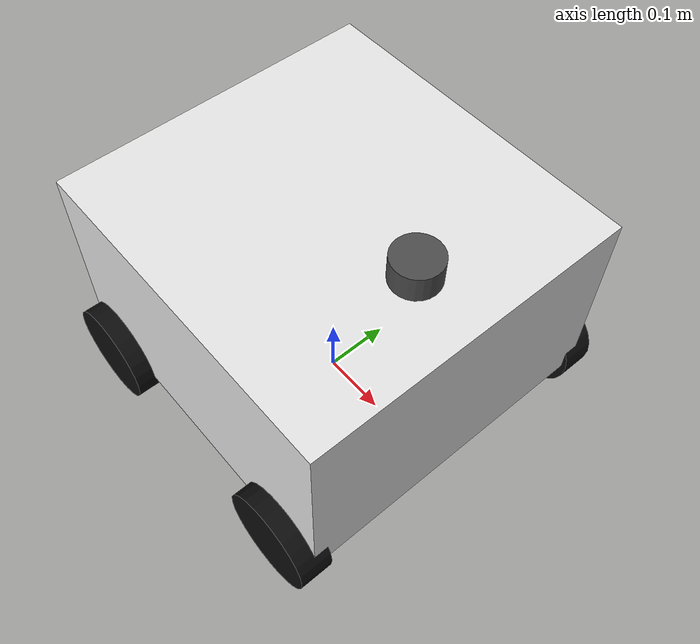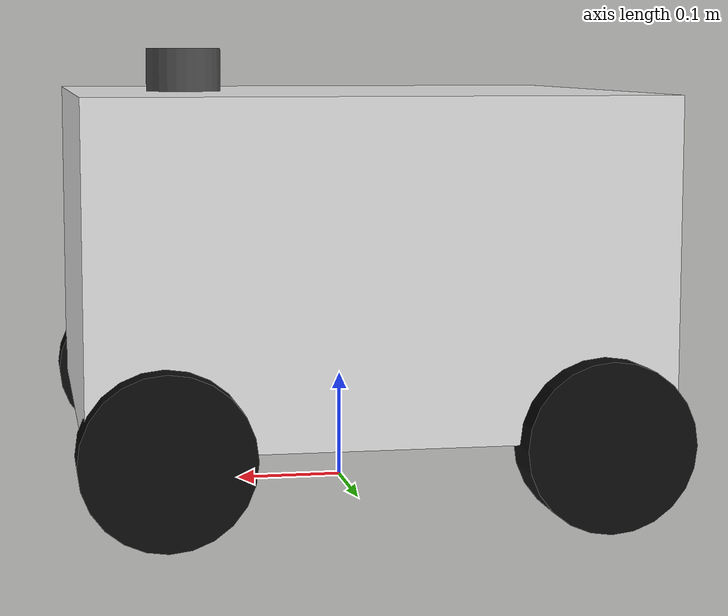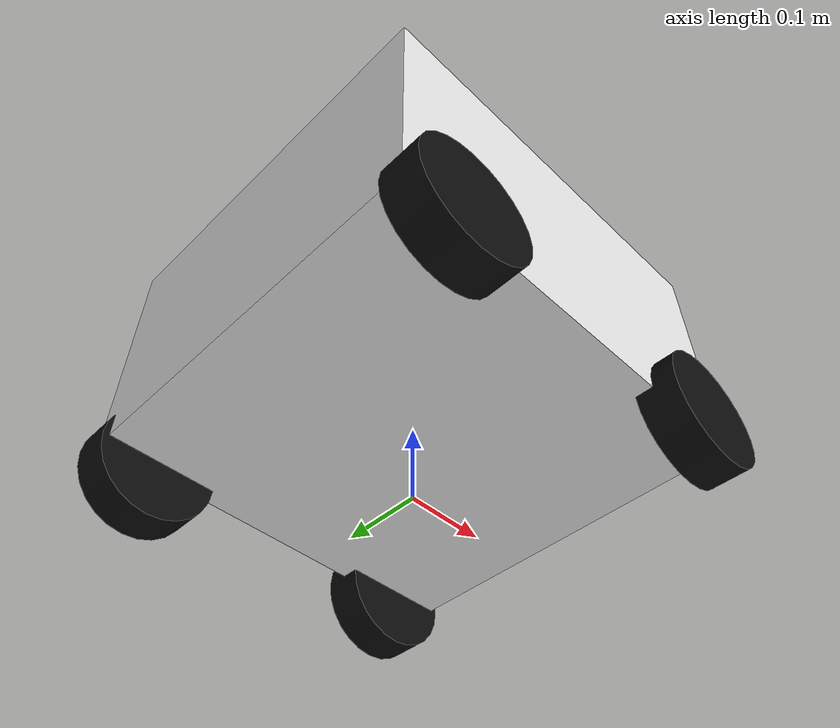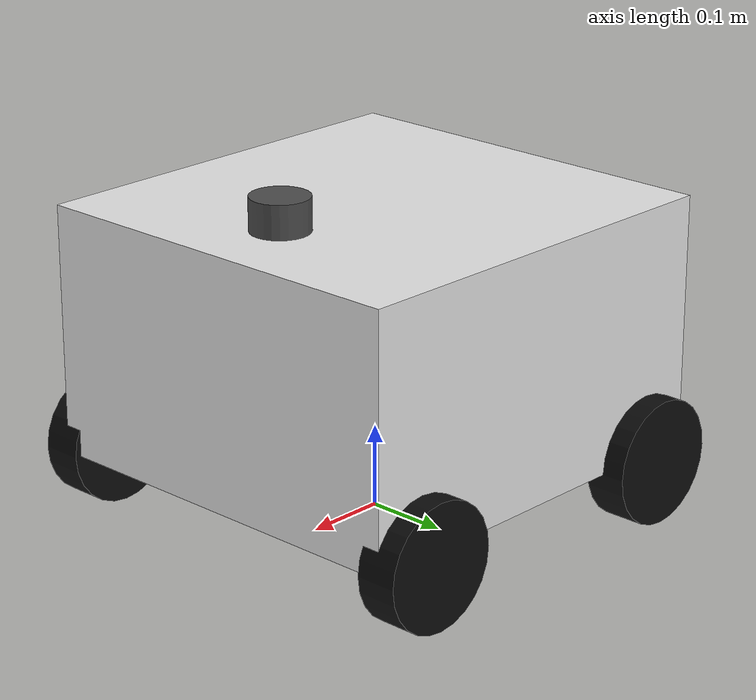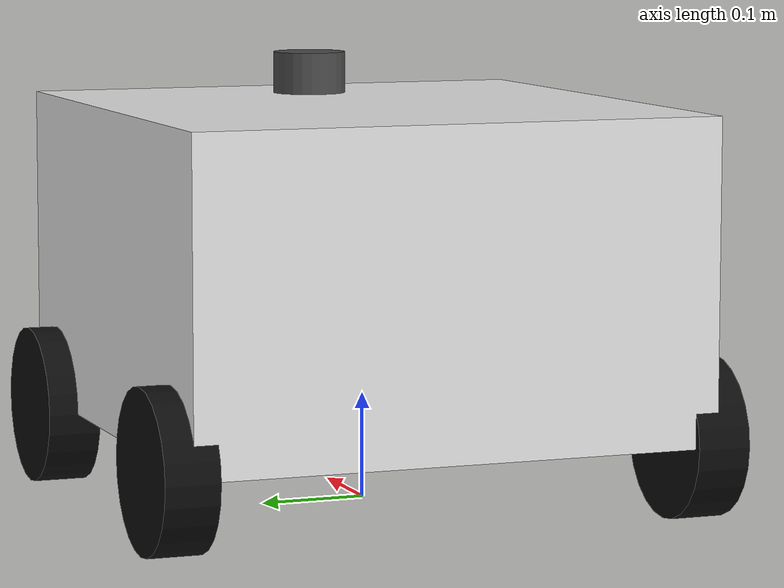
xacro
<?xml version="1.0"?>
<robot name="augdd" xmlns:xacro="http://www.ros.org/wiki/xacro">

  <xacro:property name="chassis_length" value="0.514"/>
  <xacro:property name="chassis_width"  value="0.494"/>
  <xacro:property name="chassis_height" value="0.30"/> <!-- body only, doors/roof excluded -->
  <xacro:property name="chassis_mass"   value="27.0"/>

  <xacro:property name="wheel_radius"   value="0.075"/>
  <xacro:property name="wheel_width"    value="0.05"/>
  <xacro:property name="wheel_mass"     value="1.0"/>

  <xacro:property name="wheel_x_offset" value="0.19"/>  <!-- front/rear from center -->
  <xacro:property name="wheel_y_offset" value="0.25"/>  <!-- half track width -->
  <xacro:property name="wheel_z"        value="0.0"/>

  <material name="augdd_white"><color rgba="0.9 0.9 0.9 1.0"/></material>
  <material name="augdd_grey"><color rgba="0.3 0.3 0.3 1.0"/></material>
  <material name="augdd_black"><color rgba="0.05 0.05 0.05 1.0"/></material>

  <!-- ============ base_footprint / base_link ============ -->
  <link name="base_footprint"/>

  <joint name="base_footprint_joint" type="fixed">
    <parent link="base_footprint"/>
    <child link="base_link"/>
    <origin xyz="0 0 ${wheel_radius}" rpy="0 0 0"/>
  </joint>

  <link name="base_link">
    <visual>
      <origin xyz="0 0 ${chassis_height/2}" rpy="0 0 0"/>
      <geometry>
        <box size="${chassis_length} ${chassis_width} ${chassis_height}"/>
      </geometry>
      <material name="augdd_white"/>
    </visual>
    <collision>
      <origin xyz="0 0 ${chassis_height/2}" rpy="0 0 0"/>
      <geometry>
        <box size="${chassis_length} ${chassis_width} ${chassis_height}"/>
      </geometry>
    </collision>
    <inertial>
      <origin xyz="0 0 ${chassis_height/2}" rpy="0 0 0"/>
      <mass value="${chassis_mass}"/>
      <inertia ixx="0.6" ixy="0.0" ixz="0.0" iyy="0.7" iyz="0.0" izz="0.9"/>
    </inertial>
  </link>

  <!-- ============ wheel macro ============ -->
  <xacro:macro name="wheel" params="prefix x_reflect y_reflect joint_type">
    <link name="${prefix}_wheel_link">
      <visual>
        <origin xyz="0 0 0" rpy="1.5708 0 0"/>
        <geometry><cylinder radius="${wheel_radius}" length="${wheel_width}"/></geometry>
        <material name="augdd_black"/>
      </visual>
      <collision>
        <origin xyz="0 0 0" rpy="1.5708 0 0"/>
        <geometry><cylinder radius="${wheel_radius}" length="${wheel_width}"/></geometry>
      </collision>
      <inertial>
        <mass value="${wheel_mass}"/>
        <inertia ixx="0.01" ixy="0" ixz="0" iyy="0.01" iyz="0" izz="0.01"/>
      </inertial>
    </link>

    <joint name="${prefix}_wheel_joint" type="${joint_type}">
      <parent link="base_link"/>
      <child link="${prefix}_wheel_link"/>
      <origin xyz="${x_reflect*wheel_x_offset} ${y_reflect*wheel_y_offset} ${wheel_z}" rpy="0 0 0"/>
      <axis xyz="0 1 0"/>
      <xacro:if value="${joint_type == 'continuous'}">
        <limit effort="10" velocity="10"/>
      </xacro:if>
    </joint>
  </xacro:macro>

  <!-- front wheels: driven -->
  <xacro:wheel prefix="front_left"  x_reflect="1"  y_reflect="1"  joint_type="continuous"/>
  <xacro:wheel prefix="front_right" x_reflect="1"  y_reflect="-1" joint_type="continuous"/>
  <!-- rear wheels: passive casters -->
  <xacro:wheel prefix="rear_left"   x_reflect="-1" y_reflect="1"  joint_type="continuous"/>
  <xacro:wheel prefix="rear_right"  x_reflect="-1" y_reflect="-1" joint_type="continuous"/>

  <!-- ============ 2D LiDAR ============ -->
  <link name="lidar_link">
    <visual>
      <geometry><cylinder radius="0.035" length="0.04"/></geometry>
      <material name="augdd_grey"/>
    </visual>
    <collision>
      <geometry><cylinder radius="0.035" length="0.04"/></geometry>
    </collision>
    <inertial>
      <mass value="0.15"/>
      <inertia ixx="0.0001" ixy="0" ixz="0" iyy="0.0001" iyz="0" izz="0.0001"/>
    </inertial>
  </link>

  <joint name="lidar_joint" type="fixed">
    <parent link="base_link"/>
    <child link="lidar_link"/>
    <origin xyz="0.15 0 ${chassis_height + 0.02}" rpy="0 0 0"/>
  </joint>

  <!-- ============ IMU (for odom fusion, future use) ============ -->
  <link name="imu_link">
    <visual><geometry><box size="0.02 0.02 0.01"/></geometry></visual>
  </link>
  <joint name="imu_joint" type="fixed">
    <parent link="base_link"/>
    <child link="imu_link"/>
    <origin xyz="0 0 ${chassis_height/2}" rpy="0 0 0"/>
  </joint>

  <!-- ============ Gazebo plugins ============ -->
  <gazebo>
    <plugin name="diff_drive_controller" filename="libgazebo_ros_diff_drive.so">
      <ros>
        <namespace>/</namespace>
      </ros>
      <left_joint>front_left_wheel_joint</left_joint>
      <right_joint>front_right_wheel_joint</right_joint>
      <wheel_separation>${2*wheel_y_offset}</wheel_separation>
      <wheel_diameter>${2*wheel_radius}</wheel_diameter>
      <max_wheel_torque>20</max_wheel_torque>
      <max_wheel_acceleration>2.0</max_wheel_acceleration>
      <command_topic>cmd_vel</command_topic>
      <publish_odom>true</publish_odom>
      <publish_odom_tf>true</publish_odom_tf>
      <publish_wheel_tf>true</publish_wheel_tf>
      <odometry_topic>odom</odometry_topic>
      <odometry_frame>odom</odometry_frame>
      <robot_base_frame>base_footprint</robot_base_frame>
    </plugin>
  </gazebo>

  <gazebo reference="lidar_link">
    <sensor type="ray" name="lidar_sensor">
      <pose>0 0 0 0 0 0</pose>
      <visualize>false</visualize>
      <update_rate>10</update_rate>
      <ray>
        <scan>
          <horizontal>
            <samples>360</samples>
            <resolution>1</resolution>
            <min_angle>-3.14159</min_angle>
            <max_angle>3.14159</max_angle>
          </horizontal>
        </scan>
        <range>
          <min>0.12</min>
          <max>10.0</max>
          <resolution>0.01</resolution>
        </range>
        <noise>
          <type>gaussian</type>
          <mean>0.0</mean>
          <stddev>0.01</stddev>
        </noise>
      </ray>
      <plugin name="lidar_plugin" filename="libgazebo_ros_ray_sensor.so">
        <ros>
          <namespace>/</namespace>
          <remapping>~/out:=scan</remapping>
        </ros>
        <output_type>sensor_msgs/LaserScan</output_type>
        <frame_name>lidar_link</frame_name>
      </plugin>
    </sensor>
  </gazebo>

  <!-- rear caster friction reduction so they don't fight the diff drive -->
  <gazebo reference="rear_left_wheel_link">
    <mu1>0.05</mu1>
    <mu2>0.05</mu2>
  </gazebo>
  <gazebo reference="rear_right_wheel_link">
    <mu1>0.05</mu1>
    <mu2>0.05</mu2>
  </gazebo>
  <gazebo reference="front_left_wheel_link">
    <mu1>1.0</mu1>
    <mu2>1.0</mu2>
  </gazebo>
  <gazebo reference="front_right_wheel_link">
    <mu1>1.0</mu1>
    <mu2>1.0</mu2>
  </gazebo>

</robot>
